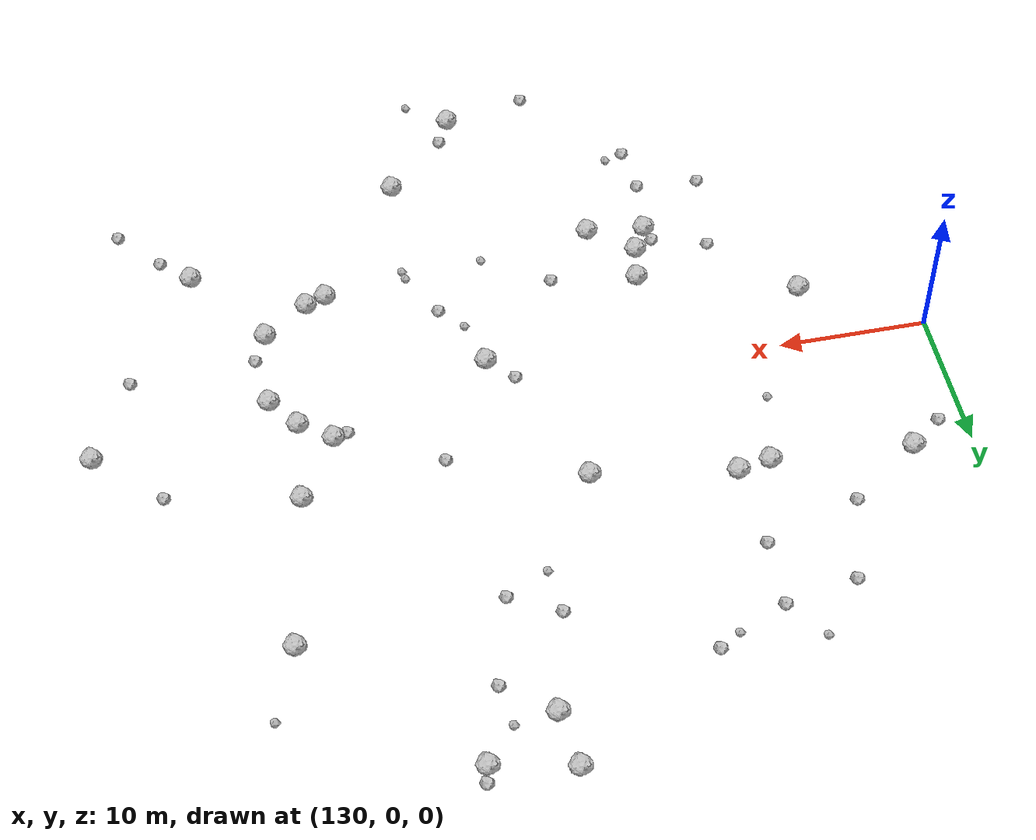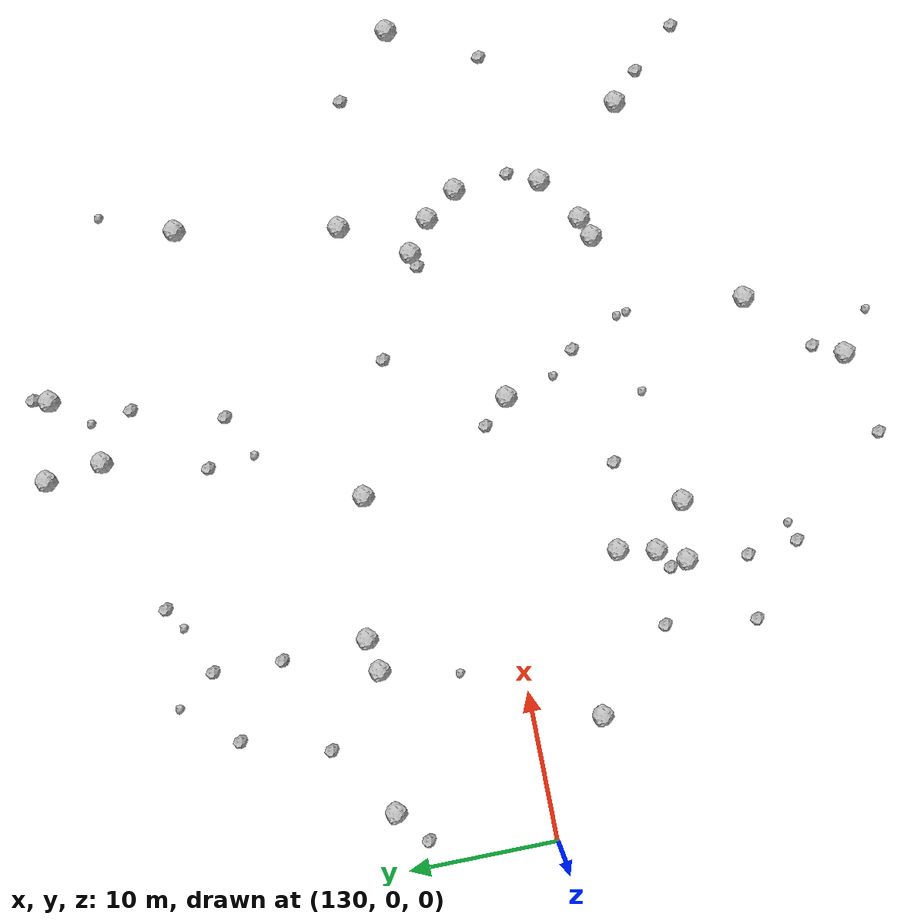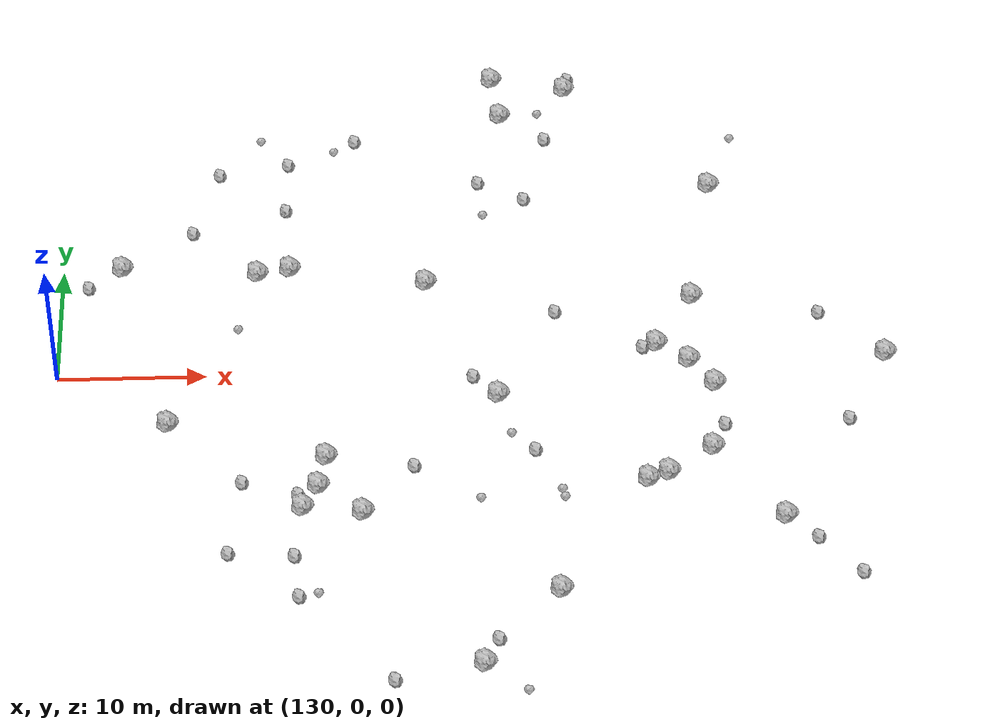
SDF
<sdf version="1.6">
 <world name="default">
  <include><uri>model://sun</uri></include>
  <model name="rock1_4_2">
   <include><uri>model://rock1</uri><pose>163.01928735324455 -19.402862286430647 0.5 0 0 0</pose></include>
  </model>
  <model name="rock1_4_3">
   <include><uri>model://rock1</uri><pose>159.52024628774825 -2.4186119161276025 0.5 0 0 0</pose></include>
  </model>
  <model name="rock1_4_4">
   <include><uri>model://rock1</uri><pose>170.323600947238 2.0267431046304836 0.5 0 0 0</pose></include>
  </model>
  <model name="rock1_4_5">
   <include><uri>model://rock1</uri><pose>172.99396186396305 6.442200380031522 0.5 0 0 0</pose></include>
  </model>
  <model name="rock1_4_6">
   <include><uri>model://rock1</uri><pose>150.4422089432396 -12.563252670841717 0.5 0 0 0</pose></include>
  </model>
  <model name="rock1_4_7">
   <include><uri>model://rock1</uri><pose>137.5624980261397 -4.516419175440522 0.5 0 0 0</pose></include>
  </model>
  <model name="rock1_4_8">
   <include><uri>model://rock1</uri><pose>169.09929071111947 -10.18207739794244 0.5 0 0 0</pose></include>
  </model>
  <model name="rock1_4_9">
   <include><uri>model://rock1</uri><pose>172.4257733578537 0.46524386867192646 0.5 0 0 0</pose></include>
  </model>
  <model name="rock1_4_10">
   <include><uri>model://rock1</uri><pose>160.45777696549618 24.949164809708357 0.5 0 0 0</pose></include>
  </model>
  <model name="rock1_4_11">
   <include><uri>model://rock1</uri><pose>174.0136031185641 -1.7439512693323742 0.5 0 0 0</pose></include>
  </model>
  <model name="rock1_4_12">
   <include><uri>model://rock1</uri><pose>134.01829498550694 10.069380258173553 0.5 0 0 0</pose></include>
  </model>
  <model name="rock1_4_13">
   <include><uri>model://rock1</uri><pose>146.53294891435314 -12.075580553058003 0.5 0 0 0</pose></include>
  </model>
  <model name="rock1_4_14">
   <include><uri>model://rock1</uri><pose>165.18309412301093 27.670146530795854 0.5 0 0 0</pose></include>
  </model>
  <model name="rock1_4_15">
   <include><uri>model://rock1</uri><pose>143.3190437403694 9.366677958107061 0.5 0 0 0</pose></include>
  </model>
  <model name="rock1_4_16">
   <include><uri>model://rock1</uri><pose>174.92704231581948 17.36188347986826 0.5 0 0 0</pose></include>
  </model>
  <model name="rock1_4_17">
   <include><uri>model://rock1</uri><pose>177.81390493722367 -13.595609933623724 0.5 0 0 0</pose></include>
  </model>
  <model name="rock1_4_18">
   <include><uri>model://rock1</uri><pose>159.9605015763116 28.790427066815923 0.5 0 0 0</pose></include>
  </model>
  <model name="rock1_4_19">
   <include><uri>model://rock1</uri><pose>173.50984256506337 -7.483095798831695 0.5 0 0 0</pose></include>
  </model>
  <model name="rock1_4_20">
   <include><uri>model://rock1</uri><pose>185.6975348651908 0.7166258204736913 0.5 0 0 0</pose></include>
  </model>
  <model name="rock1_4_21">
   <include><uri>model://rock1</uri><pose>154.85480873066194 8.225903284204769 0.5 0 0 0</pose></include>
  </model>
  <model name="rock1_4_22">
   <include><uri>model://rock1</uri><pose>147.5420486115919 -10.21574583313787 0.5 0 0 0</pose></include>
  </model>
  <model name="rock1_4_23">
   <include><uri>model://rock1</uri><pose>148.0527626620067 -7.699333292100675 0.5 0 0 0</pose></include>
  </model>
  <model name="rock1_4_24">
   <include><uri>model://rock1</uri><pose>158.0056899133165 -25.260826851126176 0.5 0 0 0</pose></include>
  </model>
  <model name="rock1_4_25">
   <include><uri>model://rock1</uri><pose>170.47170799077696 -9.62918808643916 0.5 0 0 0</pose></include>
  </model>
  <model name="rock1_4_26">
   <include><uri>model://rock1</uri><pose>145.52393699417766 9.782273378073874 0.5 0 0 0</pose></include>
  </model>
  <model name="rock2_4_0">
   <include><uri>model://rock2</uri><pose>163.53267358464188 22.46405883274388 0.3 0 0 0</pose></include>
  </model>
  <model name="rock2_4_1">
   <include><uri>model://rock2</uri><pose>146.0312365635476 -16.159543092922497 0.3 0 0 0</pose></include>
  </model>
  <model name="rock2_4_2">
   <include><uri>model://rock2</uri><pose>161.85005382512526 16.34697039913678 0.3 0 0 0</pose></include>
  </model>
  <model name="rock2_4_3">
   <include><uri>model://rock2</uri><pose>174.42514754588166 -5.441109399139574 0.3 0 0 0</pose></include>
  </model>
  <model name="rock2_4_4">
   <include><uri>model://rock2</uri><pose>163.57481732473377 5.215255436922938 0.3 0 0 0</pose></include>
  </model>
  <model name="rock2_4_5">
   <include><uri>model://rock2</uri><pose>182.3004226714546 -18.42832036508898 0.3 0 0 0</pose></include>
  </model>
  <model name="rock2_4_6">
   <include><uri>model://rock2</uri><pose>150.00309820869091 22.546747258909818 0.3 0 0 0</pose></include>
  </model>
  <model name="rock2_4_7">
   <include><uri>model://rock2</uri><pose>131.776723777223 8.315460155066361 0.3 0 0 0</pose></include>
  </model>
  <model name="rock2_4_8">
   <include><uri>model://rock2</uri><pose>181.4981281334674 4.689547109289293 0.3 0 0 0</pose></include>
  </model>
  <model name="rock2_4_9">
   <include><uri>model://rock2</uri><pose>141.7566745042949 -15.868593624830256 0.3 0 0 0</pose></include>
  </model>
  <model name="rock2_4_10">
   <include><uri>model://rock2</uri><pose>146.22209363837922 -10.938749869396219 0.3 0 0 0</pose></include>
  </model>
  <model name="rock2_4_11">
   <include><uri>model://rock2</uri><pose>145.19360595507118 15.58845663660778 0.3 0 0 0</pose></include>
  </model>
  <model name="rock2_4_12">
   <include><uri>model://rock2</uri><pose>158.68281663964652 18.060084491380017 0.3 0 0 0</pose></include>
  </model>
  <model name="rock2_4_13">
   <include><uri>model://rock2</uri><pose>158.91250345150064 -23.305097621560254 0.3 0 0 0</pose></include>
  </model>
  <model name="rock2_4_14">
   <include><uri>model://rock2</uri><pose>142.55455302685232 -9.801207754527468 0.3 0 0 0</pose></include>
  </model>
  <model name="rock2_4_15">
   <include><uri>model://rock2</uri><pose>157.86732351507973 -0.6702633285546753 0.3 0 0 0</pose></include>
  </model>
  <model name="rock2_4_16">
   <include><uri>model://rock2</uri><pose>153.81244357994223 -8.618081670599558 0.3 0 0 0</pose></include>
  </model>
  <model name="rock2_4_17">
   <include><uri>model://rock2</uri><pose>165.4442200935367 28.76317800737727 0.3 0 0 0</pose></include>
  </model>
  <model name="rock2_4_18">
   <include><uri>model://rock2</uri><pose>169.36003440921377 1.7353961143590304 0.3 0 0 0</pose></include>
  </model>
  <model name="rock2_4_19">
   <include><uri>model://rock2</uri><pose>182.7027474108732 -5.1400718093785365 0.3 0 0 0</pose></include>
  </model>
  <model name="rock2_4_20">
   <include><uri>model://rock2</uri><pose>161.80165023351032 -7.391004314915499 0.3 0 0 0</pose></include>
  </model>
  <model name="rock2_4_21">
   <include><uri>model://rock2</uri><pose>179.70726132543456 -15.432852591288068 0.3 0 0 0</pose></include>
  </model>
  <model name="rock2_4_22">
   <include><uri>model://rock2</uri><pose>145.31939411485047 20.230888138698603 0.3 0 0 0</pose></include>
  </model>
  <model name="rock2_4_23">
   <include><uri>model://rock2</uri><pose>138.76867547782916 13.485388855072877 0.3 0 0 0</pose></include>
  </model>
  <model name="rock2_4_24">
   <include><uri>model://rock2</uri><pose>140.50883435979767 19.299754439115453 0.3 0 0 0</pose></include>
  </model>
  <model name="rock2_4_25">
   <include><uri>model://rock2</uri><pose>146.34480262917245 -19.549239954749936 0.3 0 0 0</pose></include>
  </model>
  <model name="rock2_4_26">
   <include><uri>model://rock2</uri><pose>152.35499617790995 -26.443994165513452 0.3 0 0 0</pose></include>
  </model>
  <model name="rock3_4_0">
   <include><uri>model://rock3</uri><pose>147.57820155165476 -19.248577120529205 0.2 0 0 0</pose></include>
  </model>
  <model name="rock3_4_1">
   <include><uri>model://rock3</uri><pose>143.34751064111404 22.828549142103704 0.2 0 0 0</pose></include>
  </model>
  <model name="rock3_4_2">
   <include><uri>model://rock3</uri><pose>163.4334862642641 -10.830810759643494 0.2 0 0 0</pose></include>
  </model>
  <model name="rock3_4_3">
   <include><uri>model://rock3</uri><pose>145.08038351763912 15.426170256030765 0.2 0 0 0</pose></include>
  </model>
  <model name="rock3_4_4">
   <include><uri>model://rock3</uri><pose>142.0478031539391 4.170447765282191 0.2 0 0 0</pose></include>
  </model>
  <model name="rock3_4_5">
   <include><uri>model://rock3</uri><pose>176.77338344403566 22.259868742302324 0.2 0 0 0</pose></include>
  </model>
  <model name="rock3_4_6">
   <include><uri>model://rock3</uri><pose>148.52125465539027 21.600527745058493 0.2 0 0 0</pose></include>
  </model>
  <model name="rock3_4_7">
   <include><uri>model://rock3</uri><pose>160.61915243225417 -27.390856004944723 0.2 0 0 0</pose></include>
  </model>
  <model name="rock3_4_8">
   <include><uri>model://rock3</uri><pose>163.1291546911882 25.207453339614034 0.2 0 0 0</pose></include>
  </model>
  <model name="rock3_4_9">
   <include><uri>model://rock3</uri><pose>158.09673473715043 -11.473498697792518 0.2 0 0 0</pose></include>
  </model>
  <model name="rock3_4_10">
   <include><uri>model://rock3</uri><pose>160.27864079941787 -5.818054454299375 0.2 0 0 0</pose></include>
  </model>
  <model name="rock3_4_11">
   <include><uri>model://rock3</uri><pose>158.9286918133697 14.873934492591204 0.2 0 0 0</pose></include>
  </model>
  <model name="rock3_4_12">
   <include><uri>model://rock3</uri><pose>163.5690764134563 -11.509932586658337 0.2 0 0 0</pose></include>
  </model>
 </world>
</sdf>
